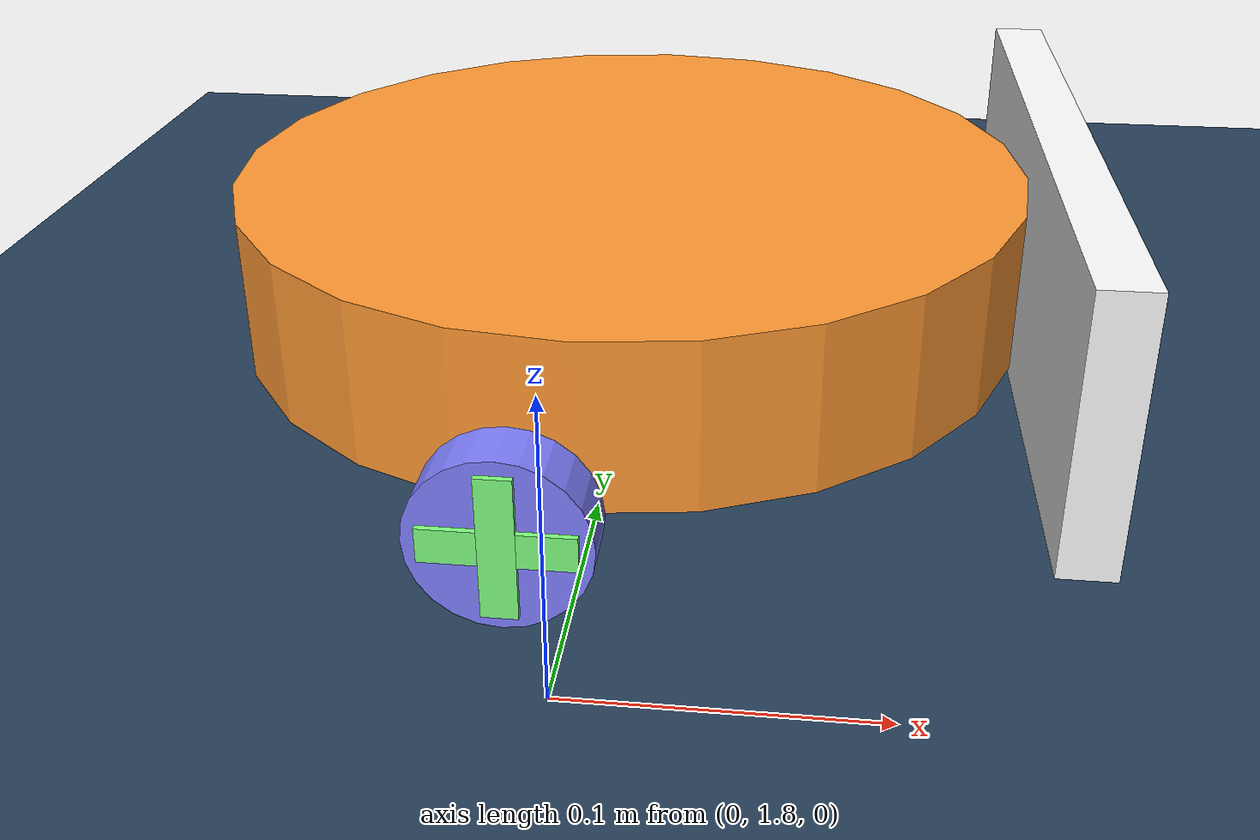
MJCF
<mujoco>
  <compiler autolimits="true"/>

  <asset>
    <texture name="grid" type="2d" builtin="checker" width="512" height="512" rgb1=".1 .2 .3" rgb2=".2 .3 .4"/>
    <material name="grid" texture="grid" texrepeat="1 1" texuniform="true" reflectance=".2"/>
    <mesh name="chasis" scale=".01 .006 .0015"
      vertex=" 9   2   0
              -10  10  10
               9  -2   0
               10  3  -10
               10 -3  -10
              -8   10 -10
              -10 -10  10
              -8  -10 -10
              -5   0   20"/>
  </asset>

  <default>
    <joint damping=".03" actuatorfrcrange="-0.5 0.5"/>
    <default class="wheel">
        <geom type="cylinder" size=".03 .01" rgba=".5 .5 1 1"/>
    </default>
    <default class="decor">
        <site type="box" rgba=".5 1 .5 1"/>
    </default>
</default>

<worldbody>
  <geom type="plane" size="6 6 .01" material="grid"/>

  <body name="pusher1" pos="0 2 .03">

    <freejoint/>
    <geom name="base"
            type="cylinder"
            pos="0 0 0.03"
            size="0.15 0.03"
            rgba="1.0 0.6 0.2 1"/>

    <geom type="box" pos="0.16 0 0.03" size="0.01 0.14 0.05" rgba="1 1 1 1" />

    <geom name="front wheel" pos="0.12 0 -.015" type="sphere" size=".015" condim="1" priority="1"/>

    <body name="left wheel" pos="-.02 .16 0" zaxis="0 1 0">
      <joint name="left"/>
      <geom class="wheel"/>
      <site class="decor" size=".006 .025 .012"/>
      <site class="decor" size=".025 .006 .012"/>
    </body>

    <body name="right wheel" pos="-.02 -.16 0" zaxis="0 1 0">
      <joint name="right"/>
      <geom class="wheel"/>
      <site class="decor" size=".006 .025 .012"/>
      <site class="decor" size=".025 .006 .012"/>
    </body>

  </body>
</worldbody>

<tendon>
  <fixed name="forward">
    <joint joint="left" coef=".5"/>
    <joint joint="right" coef=".5"/>
  </fixed>
  <fixed name="turn">
    <joint joint="left" coef="-.5"/>
    <joint joint="right" coef=".5"/>
  </fixed>
</tendon>

<actuator>
  <motor name="forward" tendon="forward" ctrlrange="-1 1"/>
  <motor name="turn" tendon="turn" ctrlrange="-1 1"/>
</actuator>

<sensor>
    <jointactuatorfrc name="right" joint="right"/>
    <jointactuatorfrc name="left" joint="left"/>
  </sensor>
</mujoco>
